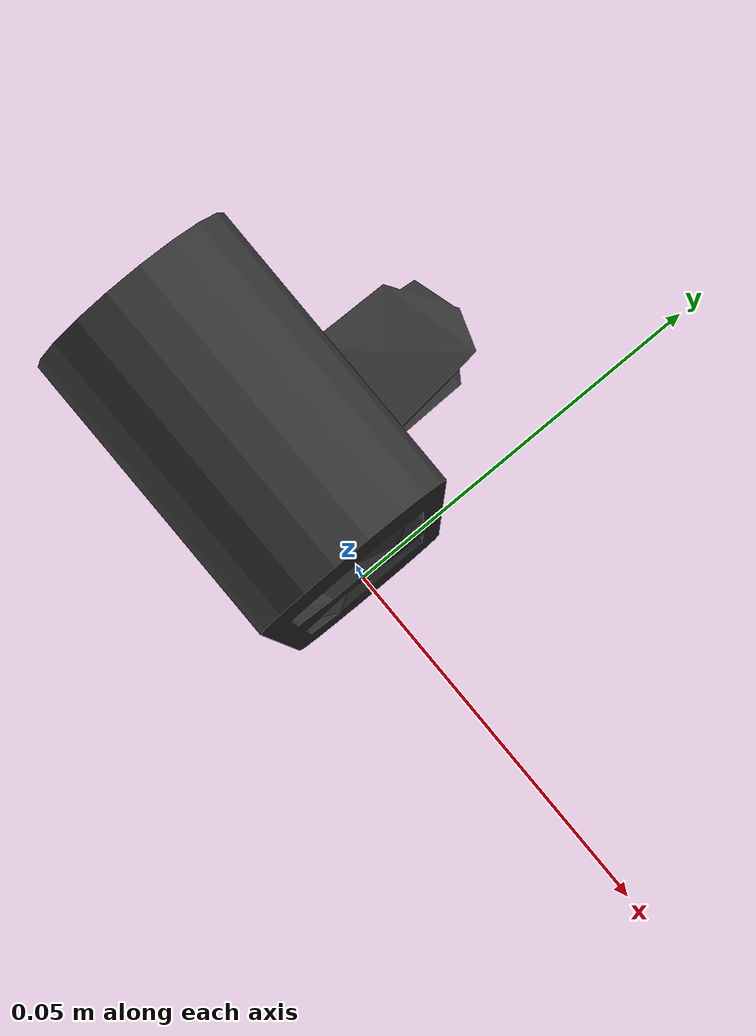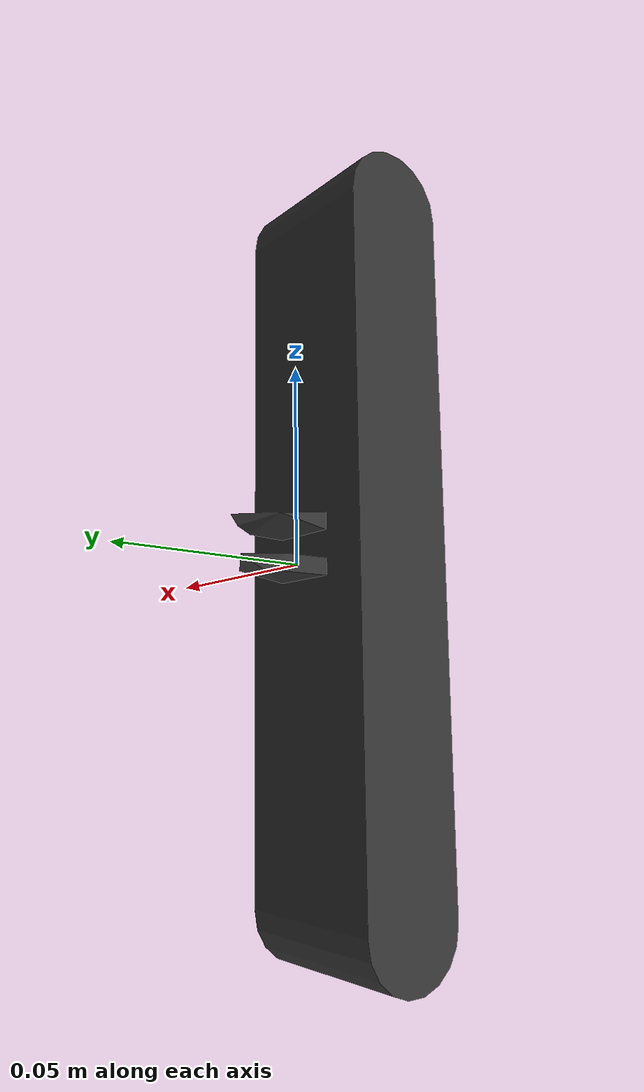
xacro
<robot name="Asus_Camera_link"><link name="Asus_Camera_link">
    <inertial>
      <origin rpy="0 0 0" xyz="-0.00010275 -0.00025849 0.00032822" />
      <mass value="0.14689" />
      <inertia ixx="0.00037709" ixy="-2.2879E-08" ixz="1.0241E-05" iyy="0.00038351" iyz="1.2981E-08" izz="2.2432E-05" />
    </inertial>
    <visual>
      <origin rpy="1.57 0 0" xyz="0 0 0" />
      <geometry>
        <mesh filename="package://robotican_description/lizi/meshes/Asus_Camera_Link.STL" />
      </geometry>
      <material name="">
        <color rgba="0.2 0.2 0.2 1" />
      </material>
    </visual>
    <collision>
      <origin rpy="0 0 0" xyz="0 0 0" />
      <geometry>
        <mesh filename="package://robotican_description/lizi/meshes/Asus_Camera_Link.STL" />
      </geometry>
    </collision>
  </link>
  </robot>
